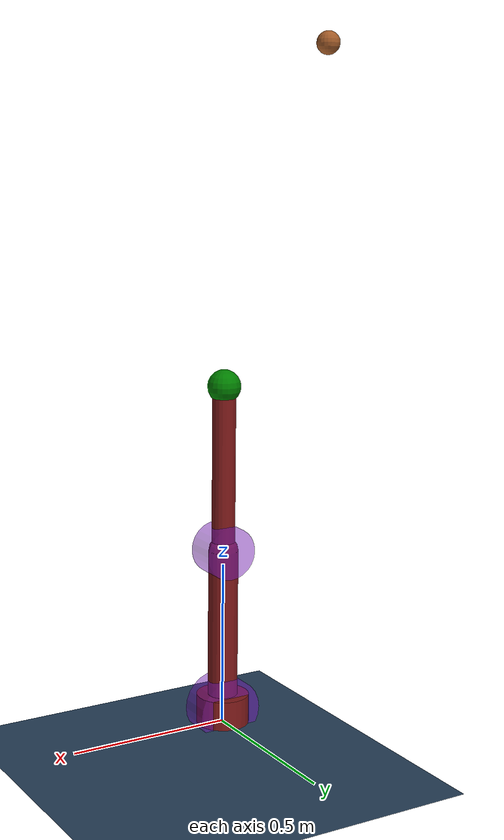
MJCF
<mujoco model="arm">
  <compiler autolimits="true"/>
  <option timestep="0.005" iterations="50" solver="Newton" tolerance="1e-10"/>

  <visual>
    <map force="0.1" zfar="30"/>
    <rgba haze="0.15 0.25 0.35 1"/>
    <global offwidth="2560" offheight="1440" elevation="20" azimuth="120"/>
  </visual>

  <statistic center="0 0 0.7"/>

  <asset>
    <texture type="skybox" builtin="gradient" rgb1=".3 .5 .7" rgb2="0 0 0" width="32" height="512"/>
    <texture name="body" type="cube" builtin="flat" mark="cross" width="128" height="128" rgb1="0.8 0.6 0.4" rgb2="0.8 0.6 0.4" markrgb="1 1 1" random="0.01"/>
    <material name="body" texture="body" texuniform="true" rgba="0.8 0.6 .4 1"/>
    <texture name="grid" type="2d" builtin="checker" width="512" height="512" rgb1=".1 .2 .3" rgb2=".2 .3 .4"/>
    <material name="grid" texture="grid" texrepeat="1 1" texuniform="true" reflectance=".2"/>
  </asset>

  <worldbody>
    <geom name="floor" size="0 0 .05" type="plane" material="grid" condim="3"/>

    <light name="spotlight" mode="targetbodycom" target="arm" diffuse=".8 .8 .8" specular="0.3 0.3 0.3" pos="0 -6 4" cutoff="30"/>

    <body name="ball" pos="0 0.5 2">
        <freejoint name="ball"/>
        <geom name="ball" size="0.03" type="sphere" material="body" mass="0.05" group="1" condim="6" friction=".6" solimp=".7 .8 .003" solref=".015 1" />
        <site name="ball"/>
    </body>

    <body name="arm" pos="0 0 0">
      <body name="base" pos="0 0 0.045">
        <geom name="base" type="cylinder" zaxis="0 0 1" size=".08 0.045" rgba=".5 .1 .1 1" condim="6" friction=".6" solimp=".7 .8 .003" solref=".015 1"  mass="0.250"/>
        <joint name="base" type="hinge" solreffriction=".15 1" axis="0 0 1" frictionloss="0.1"/>
        <site name="base"/>

        <body name="shoulder" pos="0 0 0">

          <geom name="upper arm" type="capsule" size="0.045" fromto="0 0 0  0 0 0.5" rgba=".5 .1 .1 1" condim="6" friction=".6" solimp=".7 .8 .003" solref=".015 1"  mass="0.250"/>
          <joint name="shoulder" type="hinge" solreffriction=".15 1" axis="0 1 0" frictionloss="0.1"/>
          <geom name="shoulder" type="cylinder" pos="0 0 0" size=".1 .05" rgba=".5 .1 .8 .5" mass="0.1" group="1" zaxis="0 1 0"/>

          <body name="forearm" pos="0 0 0.5">
            <geom name="forearm" type="capsule" size="0.035" fromto="0 0 0  0 0 0.5" rgba=".5 .1 .1 1" condim="6" friction=".6" solimp=".7 .8 .003" solref=".015 1" mass="0.250"/>
            <joint name="elbow" type="hinge" solreffriction=".15 1" axis="0 1 0" frictionloss="0.1"/>
            <geom name="elbow" type="cylinder" pos="0 0 0" size=".08 .05" rgba=".5 .1 .8 .5" mass="0.1" group="1" zaxis="0 1 0"/>
            <site name="elbow"/>

            <body name="fake_hand" pos="0 0 0.5">
              <geom name="fake_hand" type="sphere" size="0.05" rgba=".0 .5 .0 1" condim="6" friction="0.6" solimp=".7 .8 .003" solref=".015 1" mass="0.250" group="1" />
              <site name="fake_hand"/>
            </body>

          </body>

        </body>
      </body>

    </body>

  </worldbody>

  <actuator>
    <position name="base_p" joint="base" kp="120"/>
    <position name="shoulder_p" joint="shoulder" kp="60"/>
    <position name="elbow_p" joint="elbow" kp="10"/>
    <velocity name="shoulder_va" joint="shoulder" kv="0.9"/>
    <velocity name="elbow_va" joint="elbow" kv="0.9"/>
    <adhesion name="fake_hand_grab" body="fake_hand" ctrlrange="0 30"/>
  </actuator>

  <sensor>
    <velocimeter name="ball_vx" site="ball"/>
    <velocimeter name="elbow_vx" site="elbow"/>
  </sensor>

</mujoco>
